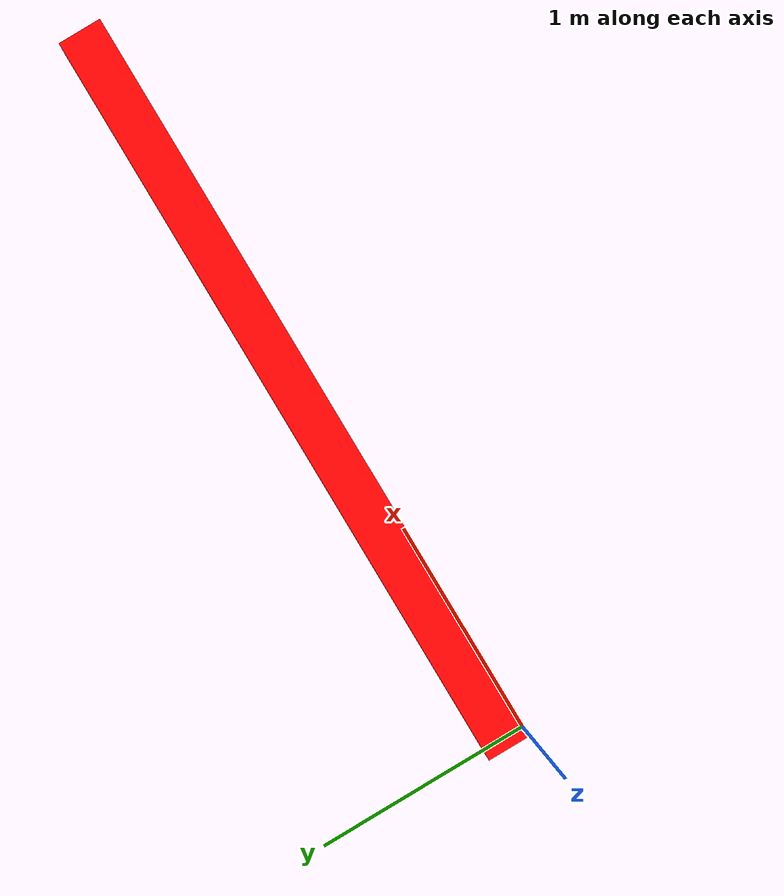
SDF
<?xml version="1.0" ?>
<sdf version="1.5">
  <model name="unknown_obst_3">
    <static>true</static>
    <link name="link">
      <pose>0 0 0 0 0 0</pose>
      <collision name="collision">
        <geometry>
            <mesh>
              <uri>
                model://unknown_obst_3/mesh/unknown_obst_wall.stl
              </uri>
              <scale>
                0.001 0.001 0.001
              </scale>
            </mesh>
        </geometry>
      </collision>
      <visual name="visual">
        <cast_shadows>true</cast_shadows>
        <geometry>
            <mesh>
              <uri>
                model://unknown_obst_3/mesh/unknown_obst_wall.stl
              </uri>
              <scale>
                0.001 0.001 0.001
              </scale>
            </mesh>
        </geometry>
        <material> <!-- color red -->
          <ambient>1 0 0 1</ambient>
          <diffuse>1 0 0 1</diffuse>
          <specular>0 0 0 0</specular>
          <emissive>0 0 0 1</emissive>
        </material>
      </visual>
    </link>
  </model>
</sdf>
